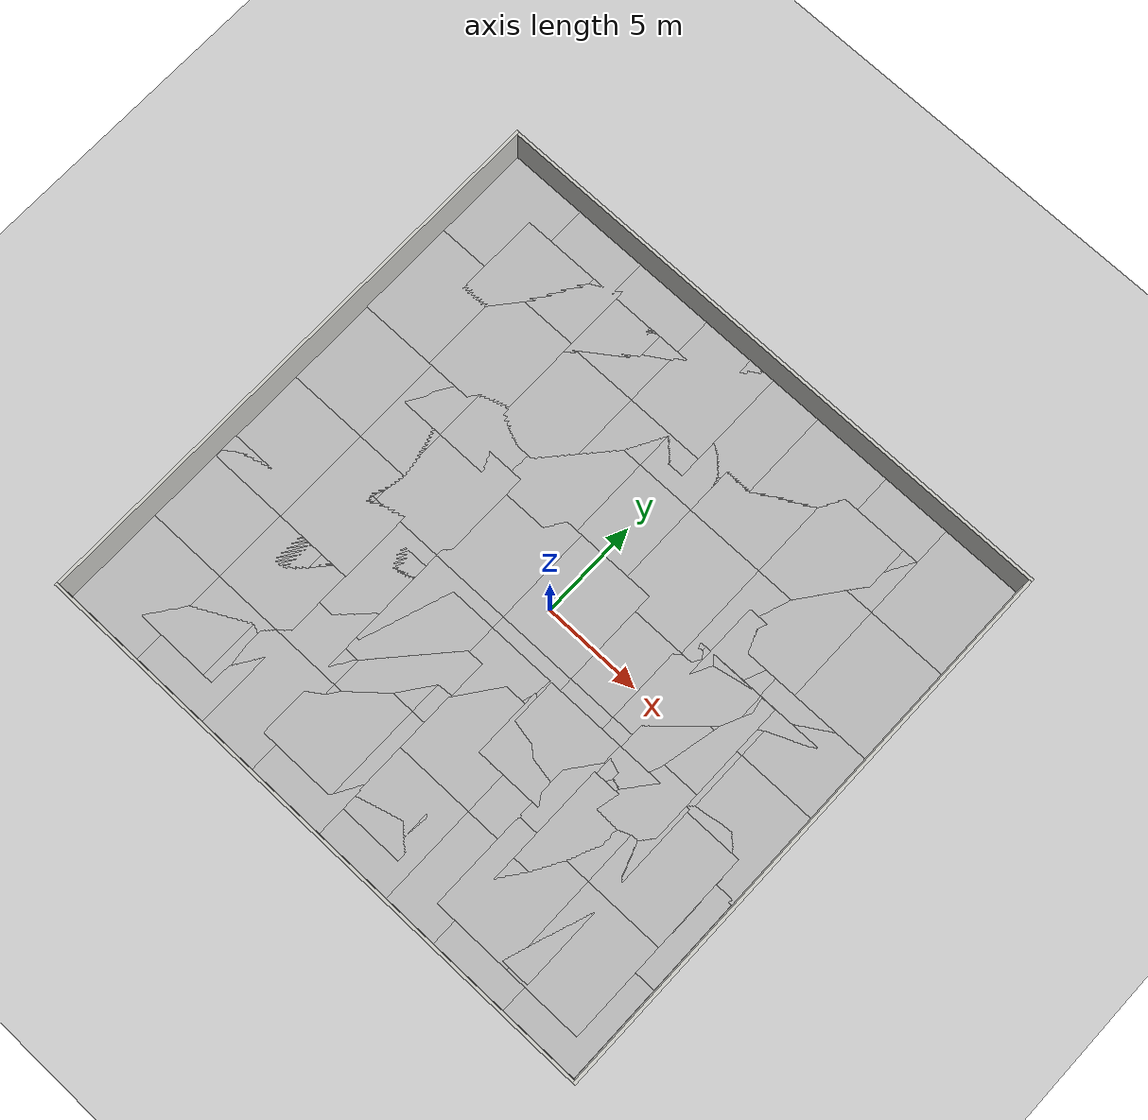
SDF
<sdf version="1.6">
 <world name="default">
  <light name="sun" type="directional">
   <pose>0 0 10 0 -0 0</pose>
   <diffuse>0.8 0.8 0.8 1</diffuse>
   <specular>0.2 0.2 0.2 1</specular>
   <attenuation>
    <range>1000</range>
    <constant>0.9</constant>
    <linear>0.01</linear>
    <quadratic>0.001</quadratic>
   </attenuation>
   <direction>-0.5 0.1 -0.9</direction>
  </light>
  <model name="ground_plane">
   <static>1</static>
   <link name="link">
    <collision name="collision">
     <geometry><plane><normal>0 0 1</normal><size>100 100</size></plane></geometry>
     <surface><friction><ode><mu>100</mu><mu2>50</mu2></ode></friction></surface>
    </collision>
    <visual name="visual">
     <cast_shadows>0</cast_shadows>
     <geometry><plane><normal>0 0 1</normal><size>100 100</size></plane></geometry>
     <material>
      <script><uri>file://media/materials/scripts/gazebo.material</uri><name>Gazebo/Grey</name></script>
     </material>
    </visual>
   </link>
  </model>
  <gravity>0 0 -9.8</gravity>
  <magnetic_field>6e-06 2.3e-05 -4.2e-05</magnetic_field>
  <atmosphere type="adiabatic"/>
  <physics name="default_physics" default="0" type="ode">
   <max_step_size>0.001</max_step_size>
   <real_time_factor>1</real_time_factor>
   <real_time_update_rate>1000</real_time_update_rate>
  </physics>
  <scene><ambient>0.4 0.4 0.4 1</ambient><background>0.7 0.7 0.7 1</background><shadows>1</shadows></scene>
  <audio><device>default</device></audio>
  <spherical_coordinates>
   <surface_model>EARTH_WGS84</surface_model>
   <latitude_deg>0</latitude_deg>
   <longitude_deg>0</longitude_deg>
   <elevation>0</elevation>
   <heading_deg>0</heading_deg>
  </spherical_coordinates>
  <model name="mud_box">
   <static>1</static>
   <link name="link">
    <collision name="collision"><geometry><box><size>8 10 0.2</size></box></geometry></collision>
    <visual name="visual_1">
     <pose>-2 2.5 0 0 -0 0</pose>
     <cast_shadows>0</cast_shadows>
     <geometry><box><size>4 5 0.2</size></box></geometry>
     <material>
      <script>
       <uri>model://mud_box/materials/scripts</uri>
       <uri>model://mud_box/materials/textures</uri>
       <name>vrc/mud</name>
      </script>
     </material>
    </visual>
    <visual name="visual_2">
     <pose>2 2.5 0 0 -0 0</pose>
     <cast_shadows>0</cast_shadows>
     <geometry><box><size>4 5 0.2</size></box></geometry>
     <material>
      <script>
       <uri>model://mud_box/materials/scripts</uri>
       <uri>model://mud_box/materials/textures</uri>
       <name>vrc/mud</name>
      </script>
     </material>
    </visual>
    <visual name="visual_3">
     <pose>2 -2.5 0 0 -0 0</pose>
     <cast_shadows>0</cast_shadows>
     <geometry><box><size>4 5 0.2</size></box></geometry>
     <material>
      <script>
       <uri>model://mud_box/materials/scripts</uri>
       <uri>model://mud_box/materials/textures</uri>
       <name>vrc/mud</name>
      </script>
     </material>
    </visual>
    <visual name="visual_4">
     <pose>-2 -2.5 0 0 -0 0</pose>
     <cast_shadows>0</cast_shadows>
     <geometry><box><size>4 5 0.2</size></box></geometry>
     <material>
      <script>
       <uri>model://mud_box/materials/scripts</uri>
       <uri>model://mud_box/materials/textures</uri>
       <name>vrc/mud</name>
      </script>
     </material>
    </visual>
   </link>
   <pose>-8.95895 7.48076 0 0 -0 0</pose>
  </model>
  <model name="mud_box_0">
   <static>1</static>
   <link name="link">
    <collision name="collision"><geometry><box><size>8 10 0.2</size></box></geometry></collision>
    <visual name="visual_1">
     <pose>-2 2.5 0 0 -0 0</pose>
     <cast_shadows>0</cast_shadows>
     <geometry><box><size>4 5 0.2</size></box></geometry>
     <material>
      <script>
       <uri>model://mud_box/materials/scripts</uri>
       <uri>model://mud_box/materials/textures</uri>
       <name>vrc/mud</name>
      </script>
     </material>
    </visual>
    <visual name="visual_2">
     <pose>2 2.5 0 0 -0 0</pose>
     <cast_shadows>0</cast_shadows>
     <geometry><box><size>4 5 0.2</size></box></geometry>
     <material>
      <script>
       <uri>model://mud_box/materials/scripts</uri>
       <uri>model://mud_box/materials/textures</uri>
       <name>vrc/mud</name>
      </script>
     </material>
    </visual>
    <visual name="visual_3">
     <pose>2 -2.5 0 0 -0 0</pose>
     <cast_shadows>0</cast_shadows>
     <geometry><box><size>4 5 0.2</size></box></geometry>
     <material>
      <script>
       <uri>model://mud_box/materials/scripts</uri>
       <uri>model://mud_box/materials/textures</uri>
       <name>vrc/mud</name>
      </script>
     </material>
    </visual>
    <visual name="visual_4">
     <pose>-2 -2.5 0 0 -0 0</pose>
     <cast_shadows>0</cast_shadows>
     <geometry><box><size>4 5 0.2</size></box></geometry>
     <material>
      <script>
       <uri>model://mud_box/materials/scripts</uri>
       <uri>model://mud_box/materials/textures</uri>
       <name>vrc/mud</name>
      </script>
     </material>
    </visual>
   </link>
   <pose>-1.55469 7.49605 0 0 -0 0</pose>
  </model>
  <model name="mud_box_1">
   <static>1</static>
   <link name="link">
    <collision name="collision"><geometry><box><size>8 10 0.2</size></box></geometry></collision>
    <visual name="visual_1">
     <pose>-2 2.5 0 0 -0 0</pose>
     <cast_shadows>0</cast_shadows>
     <geometry><box><size>4 5 0.2</size></box></geometry>
     <material>
      <script>
       <uri>model://mud_box/materials/scripts</uri>
       <uri>model://mud_box/materials/textures</uri>
       <name>vrc/mud</name>
      </script>
     </material>
    </visual>
    <visual name="visual_2">
     <pose>2 2.5 0 0 -0 0</pose>
     <cast_shadows>0</cast_shadows>
     <geometry><box><size>4 5 0.2</size></box></geometry>
     <material>
      <script>
       <uri>model://mud_box/materials/scripts</uri>
       <uri>model://mud_box/materials/textures</uri>
       <name>vrc/mud</name>
      </script>
     </material>
    </visual>
    <visual name="visual_3">
     <pose>2 -2.5 0 0 -0 0</pose>
     <cast_shadows>0</cast_shadows>
     <geometry><box><size>4 5 0.2</size></box></geometry>
     <material>
      <script>
       <uri>model://mud_box/materials/scripts</uri>
       <uri>model://mud_box/materials/textures</uri>
       <name>vrc/mud</name>
      </script>
     </material>
    </visual>
    <visual name="visual_4">
     <pose>-2 -2.5 0 0 -0 0</pose>
     <cast_shadows>0</cast_shadows>
     <geometry><box><size>4 5 0.2</size></box></geometry>
     <material>
      <script>
       <uri>model://mud_box/materials/scripts</uri>
       <uri>model://mud_box/materials/textures</uri>
       <name>vrc/mud</name>
      </script>
     </material>
    </visual>
   </link>
   <pose>5.43295 7.49151 0 0 -0 0</pose>
  </model>
  <model name="mud_box_2">
   <static>1</static>
   <link name="link">
    <collision name="collision"><geometry><box><size>8 10 0.2</size></box></geometry></collision>
    <visual name="visual_1">
     <pose>-2 2.5 0 0 -0 0</pose>
     <cast_shadows>0</cast_shadows>
     <geometry><box><size>4 5 0.2</size></box></geometry>
     <material>
      <script>
       <uri>model://mud_box/materials/scripts</uri>
       <uri>model://mud_box/materials/textures</uri>
       <name>vrc/mud</name>
      </script>
     </material>
    </visual>
    <visual name="visual_2">
     <pose>2 2.5 0 0 -0 0</pose>
     <cast_shadows>0</cast_shadows>
     <geometry><box><size>4 5 0.2</size></box></geometry>
     <material>
      <script>
       <uri>model://mud_box/materials/scripts</uri>
       <uri>model://mud_box/materials/textures</uri>
       <name>vrc/mud</name>
      </script>
     </material>
    </visual>
    <visual name="visual_3">
     <pose>2 -2.5 0 0 -0 0</pose>
     <cast_shadows>0</cast_shadows>
     <geometry><box><size>4 5 0.2</size></box></geometry>
     <material>
      <script>
       <uri>model://mud_box/materials/scripts</uri>
       <uri>model://mud_box/materials/textures</uri>
       <name>vrc/mud</name>
      </script>
     </material>
    </visual>
    <visual name="visual_4">
     <pose>-2 -2.5 0 0 -0 0</pose>
     <cast_shadows>0</cast_shadows>
     <geometry><box><size>4 5 0.2</size></box></geometry>
     <material>
      <script>
       <uri>model://mud_box/materials/scripts</uri>
       <uri>model://mud_box/materials/textures</uri>
       <name>vrc/mud</name>
      </script>
     </material>
    </visual>
   </link>
   <pose>9.13681 7.49142 0 0 -0 0</pose>
  </model>
  <model name="mud_box_3">
   <static>1</static>
   <link name="link">
    <collision name="collision"><geometry><box><size>8 10 0.2</size></box></geometry></collision>
    <visual name="visual_1">
     <pose>-2 2.5 0 0 -0 0</pose>
     <cast_shadows>0</cast_shadows>
     <geometry><box><size>4 5 0.2</size></box></geometry>
     <material>
      <script>
       <uri>model://mud_box/materials/scripts</uri>
       <uri>model://mud_box/materials/textures</uri>
       <name>vrc/mud</name>
      </script>
     </material>
    </visual>
    <visual name="visual_2">
     <pose>2 2.5 0 0 -0 0</pose>
     <cast_shadows>0</cast_shadows>
     <geometry><box><size>4 5 0.2</size></box></geometry>
     <material>
      <script>
       <uri>model://mud_box/materials/scripts</uri>
       <uri>model://mud_box/materials/textures</uri>
       <name>vrc/mud</name>
      </script>
     </material>
    </visual>
    <visual name="visual_3">
     <pose>2 -2.5 0 0 -0 0</pose>
     <cast_shadows>0</cast_shadows>
     <geometry><box><size>4 5 0.2</size></box></geometry>
     <material>
      <script>
       <uri>model://mud_box/materials/scripts</uri>
       <uri>model://mud_box/materials/textures</uri>
       <name>vrc/mud</name>
      </script>
     </material>
    </visual>
    <visual name="visual_4">
     <pose>-2 -2.5 0 0 -0 0</pose>
     <cast_shadows>0</cast_shadows>
     <geometry><box><size>4 5 0.2</size></box></geometry>
     <material>
      <script>
       <uri>model://mud_box/materials/scripts</uri>
       <uri>model://mud_box/materials/textures</uri>
       <name>vrc/mud</name>
      </script>
     </material>
    </visual>
   </link>
   <pose>-8.93612 -1.58015 0 0 -0 0</pose>
  </model>
  <model name="mud_box_4">
   <static>1</static>
   <link name="link">
    <collision name="collision"><geometry><box><size>8 10 0.2</size></box></geometry></collision>
    <visual name="visual_1">
     <pose>-2 2.5 0 0 -0 0</pose>
     <cast_shadows>0</cast_shadows>
     <geometry><box><size>4 5 0.2</size></box></geometry>
     <material>
      <script>
       <uri>model://mud_box/materials/scripts</uri>
       <uri>model://mud_box/materials/textures</uri>
       <name>vrc/mud</name>
      </script>
     </material>
    </visual>
    <visual name="visual_2">
     <pose>2 2.5 0 0 -0 0</pose>
     <cast_shadows>0</cast_shadows>
     <geometry><box><size>4 5 0.2</size></box></geometry>
     <material>
      <script>
       <uri>model://mud_box/materials/scripts</uri>
       <uri>model://mud_box/materials/textures</uri>
       <name>vrc/mud</name>
      </script>
     </material>
    </visual>
    <visual name="visual_3">
     <pose>2 -2.5 0 0 -0 0</pose>
     <cast_shadows>0</cast_shadows>
     <geometry><box><size>4 5 0.2</size></box></geometry>
     <material>
      <script>
       <uri>model://mud_box/materials/scripts</uri>
       <uri>model://mud_box/materials/textures</uri>
       <name>vrc/mud</name>
      </script>
     </material>
    </visual>
    <visual name="visual_4">
     <pose>-2 -2.5 0 0 -0 0</pose>
     <cast_shadows>0</cast_shadows>
     <geometry><box><size>4 5 0.2</size></box></geometry>
     <material>
      <script>
       <uri>model://mud_box/materials/scripts</uri>
       <uri>model://mud_box/materials/textures</uri>
       <name>vrc/mud</name>
      </script>
     </material>
    </visual>
   </link>
   <pose>-1.26149 -1.59097 0 0 -0 0</pose>
  </model>
  <model name="mud_box_5">
   <static>1</static>
   <link name="link">
    <collision name="collision"><geometry><box><size>8 10 0.2</size></box></geometry></collision>
    <visual name="visual_1">
     <pose>-2 2.5 0 0 -0 0</pose>
     <cast_shadows>0</cast_shadows>
     <geometry><box><size>4 5 0.2</size></box></geometry>
     <material>
      <script>
       <uri>model://mud_box/materials/scripts</uri>
       <uri>model://mud_box/materials/textures</uri>
       <name>vrc/mud</name>
      </script>
     </material>
    </visual>
    <visual name="visual_2">
     <pose>2 2.5 0 0 -0 0</pose>
     <cast_shadows>0</cast_shadows>
     <geometry><box><size>4 5 0.2</size></box></geometry>
     <material>
      <script>
       <uri>model://mud_box/materials/scripts</uri>
       <uri>model://mud_box/materials/textures</uri>
       <name>vrc/mud</name>
      </script>
     </material>
    </visual>
    <visual name="visual_3">
     <pose>2 -2.5 0 0 -0 0</pose>
     <cast_shadows>0</cast_shadows>
     <geometry><box><size>4 5 0.2</size></box></geometry>
     <material>
      <script>
       <uri>model://mud_box/materials/scripts</uri>
       <uri>model://mud_box/materials/textures</uri>
       <name>vrc/mud</name>
      </script>
     </material>
    </visual>
    <visual name="visual_4">
     <pose>-2 -2.5 0 0 -0 0</pose>
     <cast_shadows>0</cast_shadows>
     <geometry><box><size>4 5 0.2</size></box></geometry>
     <material>
      <script>
       <uri>model://mud_box/materials/scripts</uri>
       <uri>model://mud_box/materials/textures</uri>
       <name>vrc/mud</name>
      </script>
     </material>
    </visual>
   </link>
   <pose>6.02813 -1.5762 0 0 -0 0</pose>
  </model>
  <model name="mud_box_6">
   <static>1</static>
   <link name="link">
    <collision name="collision"><geometry><box><size>8 10 0.2</size></box></geometry></collision>
    <visual name="visual_1">
     <pose>-2 2.5 0 0 -0 0</pose>
     <cast_shadows>0</cast_shadows>
     <geometry><box><size>4 5 0.2</size></box></geometry>
     <material>
      <script>
       <uri>model://mud_box/materials/scripts</uri>
       <uri>model://mud_box/materials/textures</uri>
       <name>vrc/mud</name>
      </script>
     </material>
    </visual>
    <visual name="visual_2">
     <pose>2 2.5 0 0 -0 0</pose>
     <cast_shadows>0</cast_shadows>
     <geometry><box><size>4 5 0.2</size></box></geometry>
     <material>
      <script>
       <uri>model://mud_box/materials/scripts</uri>
       <uri>model://mud_box/materials/textures</uri>
       <name>vrc/mud</name>
      </script>
     </material>
    </visual>
    <visual name="visual_3">
     <pose>2 -2.5 0 0 -0 0</pose>
     <cast_shadows>0</cast_shadows>
     <geometry><box><size>4 5 0.2</size></box></geometry>
     <material>
      <script>
       <uri>model://mud_box/materials/scripts</uri>
       <uri>model://mud_box/materials/textures</uri>
       <name>vrc/mud</name>
      </script>
     </material>
    </visual>
    <visual name="visual_4">
     <pose>-2 -2.5 0 0 -0 0</pose>
     <cast_shadows>0</cast_shadows>
     <geometry><box><size>4 5 0.2</size></box></geometry>
     <material>
      <script>
       <uri>model://mud_box/materials/scripts</uri>
       <uri>model://mud_box/materials/textures</uri>
       <name>vrc/mud</name>
      </script>
     </material>
    </visual>
   </link>
   <pose>9.18201 -1.56242 0 0 -0 0</pose>
  </model>
  <model name="mud_box_7">
   <static>1</static>
   <link name="link">
    <collision name="collision"><geometry><box><size>8 10 0.2</size></box></geometry></collision>
    <visual name="visual_1">
     <pose>-2 2.5 0 0 -0 0</pose>
     <cast_shadows>0</cast_shadows>
     <geometry><box><size>4 5 0.2</size></box></geometry>
     <material>
      <script>
       <uri>model://mud_box/materials/scripts</uri>
       <uri>model://mud_box/materials/textures</uri>
       <name>vrc/mud</name>
      </script>
     </material>
    </visual>
    <visual name="visual_2">
     <pose>2 2.5 0 0 -0 0</pose>
     <cast_shadows>0</cast_shadows>
     <geometry><box><size>4 5 0.2</size></box></geometry>
     <material>
      <script>
       <uri>model://mud_box/materials/scripts</uri>
       <uri>model://mud_box/materials/textures</uri>
       <name>vrc/mud</name>
      </script>
     </material>
    </visual>
    <visual name="visual_3">
     <pose>2 -2.5 0 0 -0 0</pose>
     <cast_shadows>0</cast_shadows>
     <geometry><box><size>4 5 0.2</size></box></geometry>
     <material>
      <script>
       <uri>model://mud_box/materials/scripts</uri>
       <uri>model://mud_box/materials/textures</uri>
       <name>vrc/mud</name>
      </script>
     </material>
    </visual>
    <visual name="visual_4">
     <pose>-2 -2.5 0 0 -0 0</pose>
     <cast_shadows>0</cast_shadows>
     <geometry><box><size>4 5 0.2</size></box></geometry>
     <material>
      <script>
       <uri>model://mud_box/materials/scripts</uri>
       <uri>model://mud_box/materials/textures</uri>
       <name>vrc/mud</name>
      </script>
     </material>
    </visual>
   </link>
   <pose>-8.89693 -7.25687 0 0 -0 0</pose>
  </model>
  <model name="mud_box_8">
   <static>1</static>
   <link name="link">
    <collision name="collision"><geometry><box><size>8 10 0.2</size></box></geometry></collision>
    <visual name="visual_1">
     <pose>-2 2.5 0 0 -0 0</pose>
     <cast_shadows>0</cast_shadows>
     <geometry><box><size>4 5 0.2</size></box></geometry>
     <material>
      <script>
       <uri>model://mud_box/materials/scripts</uri>
       <uri>model://mud_box/materials/textures</uri>
       <name>vrc/mud</name>
      </script>
     </material>
    </visual>
    <visual name="visual_2">
     <pose>2 2.5 0 0 -0 0</pose>
     <cast_shadows>0</cast_shadows>
     <geometry><box><size>4 5 0.2</size></box></geometry>
     <material>
      <script>
       <uri>model://mud_box/materials/scripts</uri>
       <uri>model://mud_box/materials/textures</uri>
       <name>vrc/mud</name>
      </script>
     </material>
    </visual>
    <visual name="visual_3">
     <pose>2 -2.5 0 0 -0 0</pose>
     <cast_shadows>0</cast_shadows>
     <geometry><box><size>4 5 0.2</size></box></geometry>
     <material>
      <script>
       <uri>model://mud_box/materials/scripts</uri>
       <uri>model://mud_box/materials/textures</uri>
       <name>vrc/mud</name>
      </script>
     </material>
    </visual>
    <visual name="visual_4">
     <pose>-2 -2.5 0 0 -0 0</pose>
     <cast_shadows>0</cast_shadows>
     <geometry><box><size>4 5 0.2</size></box></geometry>
     <material>
      <script>
       <uri>model://mud_box/materials/scripts</uri>
       <uri>model://mud_box/materials/textures</uri>
       <name>vrc/mud</name>
      </script>
     </material>
    </visual>
   </link>
   <pose>-1.26078 -7.25379 0 0 -0 0</pose>
  </model>
  <model name="mud_box_9">
   <static>1</static>
   <link name="link">
    <collision name="collision"><geometry><box><size>8 10 0.2</size></box></geometry></collision>
    <visual name="visual_1">
     <pose>-2 2.5 0 0 -0 0</pose>
     <cast_shadows>0</cast_shadows>
     <geometry><box><size>4 5 0.2</size></box></geometry>
     <material>
      <script>
       <uri>model://mud_box/materials/scripts</uri>
       <uri>model://mud_box/materials/textures</uri>
       <name>vrc/mud</name>
      </script>
     </material>
    </visual>
    <visual name="visual_2">
     <pose>2 2.5 0 0 -0 0</pose>
     <cast_shadows>0</cast_shadows>
     <geometry><box><size>4 5 0.2</size></box></geometry>
     <material>
      <script>
       <uri>model://mud_box/materials/scripts</uri>
       <uri>model://mud_box/materials/textures</uri>
       <name>vrc/mud</name>
      </script>
     </material>
    </visual>
    <visual name="visual_3">
     <pose>2 -2.5 0 0 -0 0</pose>
     <cast_shadows>0</cast_shadows>
     <geometry><box><size>4 5 0.2</size></box></geometry>
     <material>
      <script>
       <uri>model://mud_box/materials/scripts</uri>
       <uri>model://mud_box/materials/textures</uri>
       <name>vrc/mud</name>
      </script>
     </material>
    </visual>
    <visual name="visual_4">
     <pose>-2 -2.5 0 0 -0 0</pose>
     <cast_shadows>0</cast_shadows>
     <geometry><box><size>4 5 0.2</size></box></geometry>
     <material>
      <script>
       <uri>model://mud_box/materials/scripts</uri>
       <uri>model://mud_box/materials/textures</uri>
       <name>vrc/mud</name>
      </script>
     </material>
    </visual>
   </link>
   <pose>6.22506 -7.26385 0 0 -0 0</pose>
  </model>
  <model name="mud_box_10">
   <static>1</static>
   <link name="link">
    <collision name="collision"><geometry><box><size>8 10 0.2</size></box></geometry></collision>
    <visual name="visual_1">
     <pose>-2 2.5 0 0 -0 0</pose>
     <cast_shadows>0</cast_shadows>
     <geometry><box><size>4 5 0.2</size></box></geometry>
     <material>
      <script>
       <uri>model://mud_box/materials/scripts</uri>
       <uri>model://mud_box/materials/textures</uri>
       <name>vrc/mud</name>
      </script>
     </material>
    </visual>
    <visual name="visual_2">
     <pose>2 2.5 0 0 -0 0</pose>
     <cast_shadows>0</cast_shadows>
     <geometry><box><size>4 5 0.2</size></box></geometry>
     <material>
      <script>
       <uri>model://mud_box/materials/scripts</uri>
       <uri>model://mud_box/materials/textures</uri>
       <name>vrc/mud</name>
      </script>
     </material>
    </visual>
    <visual name="visual_3">
     <pose>2 -2.5 0 0 -0 0</pose>
     <cast_shadows>0</cast_shadows>
     <geometry><box><size>4 5 0.2</size></box></geometry>
     <material>
      <script>
       <uri>model://mud_box/materials/scripts</uri>
       <uri>model://mud_box/materials/textures</uri>
       <name>vrc/mud</name>
      </script>
     </material>
    </visual>
    <visual name="visual_4">
     <pose>-2 -2.5 0 0 -0 0</pose>
     <cast_shadows>0</cast_shadows>
     <geometry><box><size>4 5 0.2</size></box></geometry>
     <material>
      <script>
       <uri>model://mud_box/materials/scripts</uri>
       <uri>model://mud_box/materials/textures</uri>
       <name>vrc/mud</name>
      </script>
     </material>
    </visual>
   </link>
   <pose>9.15076 -7.40134 0 0 -0 0</pose>
  </model>
  <model name="Untitled">
   <pose>-0.642288 0.3532 0 0 -0 0</pose>
   <link name="Wall_10">
    <collision name="Wall_10_Collision">
     <geometry><box><size>30 0.15 2.5</size></box></geometry>
     <pose>0 0 1.25 0 -0 0</pose>
    </collision>
    <visual name="Wall_10_Visual">
     <pose>0 0 1.25 0 -0 0</pose>
     <geometry><box><size>30 0.15 2.5</size></box></geometry>
     <material>
      <script><uri>file://media/materials/scripts/gazebo.material</uri><name>Gazebo/CeilingTiled</name></script>
      <ambient>1 1 1 1</ambient>
     </material>
     <meta><layer>0</layer></meta>
    </visual>
    <pose>0 14.1378 0 0 -0 0</pose>
   </link>
   <link name="Wall_11">
    <collision name="Wall_11_Collision">
     <geometry><box><size>28.4256 0.15 2.5</size></box></geometry>
     <pose>0 0 1.25 0 -0 0</pose>
    </collision>
    <visual name="Wall_11_Visual">
     <pose>0 0 1.25 0 -0 0</pose>
     <geometry><box><size>28.4256 0.15 2.5</size></box></geometry>
     <material>
      <script><uri>file://media/materials/scripts/gazebo.material</uri><name>Gazebo/CeilingTiled</name></script>
      <ambient>1 1 1 1</ambient>
     </material>
     <meta><layer>0</layer></meta>
    </visual>
    <pose>14.925 0 0 0 -0 -1.5708</pose>
   </link>
   <link name="Wall_20">
    <collision name="Wall_20_Collision">
     <geometry><box><size>30 0.15 2.5</size></box></geometry>
     <pose>0 0 1.25 0 -0 0</pose>
    </collision>
    <visual name="Wall_20_Visual">
     <pose>0 0 1.25 0 -0 0</pose>
     <geometry><box><size>30 0.15 2.5</size></box></geometry>
     <material>
      <script><uri>file://media/materials/scripts/gazebo.material</uri><name>Gazebo/CeilingTiled</name></script>
      <ambient>1 1 1 1</ambient>
     </material>
     <meta><layer>0</layer></meta>
    </visual>
    <pose>0 -14.1378 0 0 -0 3.14159</pose>
   </link>
   <link name="Wall_21">
    <collision name="Wall_21_Collision">
     <geometry><box><size>28.4256 0.15 2.5</size></box></geometry>
     <pose>0 0 1.25 0 -0 0</pose>
    </collision>
    <visual name="Wall_21_Visual">
     <pose>0 0 1.25 0 -0 0</pose>
     <geometry><box><size>28.4256 0.15 2.5</size></box></geometry>
     <material>
      <script><uri>file://media/materials/scripts/gazebo.material</uri><name>Gazebo/CeilingTiled</name></script>
      <ambient>1 1 1 1</ambient>
     </material>
     <meta><layer>0</layer></meta>
    </visual>
    <pose>-14.925 0 0 0 -0 1.5708</pose>
   </link>
   <static>1</static>
  </model>
  <model name="mud_box_11">
   <static>1</static>
   <link name="link">
    <collision name="collision"><geometry><box><size>8 10 0.2</size></box></geometry></collision>
    <visual name="visual_1">
     <pose>-2 2.5 0 0 -0 0</pose>
     <cast_shadows>0</cast_shadows>
     <geometry><box><size>4 5 0.2</size></box></geometry>
     <material>
      <script>
       <uri>model://mud_box/materials/scripts</uri>
       <uri>model://mud_box/materials/textures</uri>
       <name>vrc/mud</name>
      </script>
     </material>
    </visual>
    <visual name="visual_2">
     <pose>2 2.5 0 0 -0 0</pose>
     <cast_shadows>0</cast_shadows>
     <geometry><box><size>4 5 0.2</size></box></geometry>
     <material>
      <script>
       <uri>model://mud_box/materials/scripts</uri>
       <uri>model://mud_box/materials/textures</uri>
       <name>vrc/mud</name>
      </script>
     </material>
    </visual>
    <visual name="visual_3">
     <pose>2 -2.5 0 0 -0 0</pose>
     <cast_shadows>0</cast_shadows>
     <geometry><box><size>4 5 0.2</size></box></geometry>
     <material>
      <script>
       <uri>model://mud_box/materials/scripts</uri>
       <uri>model://mud_box/materials/textures</uri>
       <name>vrc/mud</name>
      </script>
     </material>
    </visual>
    <visual name="visual_4">
     <pose>-2 -2.5 0 0 -0 0</pose>
     <cast_shadows>0</cast_shadows>
     <geometry><box><size>4 5 0.2</size></box></geometry>
     <material>
      <script>
       <uri>model://mud_box/materials/scripts</uri>
       <uri>model://mud_box/materials/textures</uri>
       <name>vrc/mud</name>
      </script>
     </material>
    </visual>
   </link>
   <pose>-11.5975 9.54983 0 0 -0 0</pose>
  </model>
  <model name="mud_box_12">
   <static>1</static>
   <link name="link">
    <collision name="collision"><geometry><box><size>8 10 0.2</size></box></geometry></collision>
    <visual name="visual_1">
     <pose>-2 2.5 0 0 -0 0</pose>
     <cast_shadows>0</cast_shadows>
     <geometry><box><size>4 5 0.2</size></box></geometry>
     <material>
      <script>
       <uri>model://mud_box/materials/scripts</uri>
       <uri>model://mud_box/materials/textures</uri>
       <name>vrc/mud</name>
      </script>
     </material>
    </visual>
    <visual name="visual_2">
     <pose>2 2.5 0 0 -0 0</pose>
     <cast_shadows>0</cast_shadows>
     <geometry><box><size>4 5 0.2</size></box></geometry>
     <material>
      <script>
       <uri>model://mud_box/materials/scripts</uri>
       <uri>model://mud_box/materials/textures</uri>
       <name>vrc/mud</name>
      </script>
     </material>
    </visual>
    <visual name="visual_3">
     <pose>2 -2.5 0 0 -0 0</pose>
     <cast_shadows>0</cast_shadows>
     <geometry><box><size>4 5 0.2</size></box></geometry>
     <material>
      <script>
       <uri>model://mud_box/materials/scripts</uri>
       <uri>model://mud_box/materials/textures</uri>
       <name>vrc/mud</name>
      </script>
     </material>
    </visual>
    <visual name="visual_4">
     <pose>-2 -2.5 0 0 -0 0</pose>
     <cast_shadows>0</cast_shadows>
     <geometry><box><size>4 5 0.2</size></box></geometry>
     <material>
      <script>
       <uri>model://mud_box/materials/scripts</uri>
       <uri>model://mud_box/materials/textures</uri>
       <name>vrc/mud</name>
      </script>
     </material>
    </visual>
   </link>
   <pose>-11.4637 0.021037 0 0 -0 0</pose>
  </model>
  <model name="mud_box_14">
   <static>1</static>
   <link name="link">
    <collision name="collision"><geometry><box><size>8 10 0.2</size></box></geometry></collision>
    <visual name="visual_1">
     <pose>-2 2.5 0 0 -0 0</pose>
     <cast_shadows>0</cast_shadows>
     <geometry><box><size>4 5 0.2</size></box></geometry>
     <material>
      <script>
       <uri>model://mud_box/materials/scripts</uri>
       <uri>model://mud_box/materials/textures</uri>
       <name>vrc/mud</name>
      </script>
     </material>
    </visual>
    <visual name="visual_2">
     <pose>2 2.5 0 0 -0 0</pose>
     <cast_shadows>0</cast_shadows>
     <geometry><box><size>4 5 0.2</size></box></geometry>
     <material>
      <script>
       <uri>model://mud_box/materials/scripts</uri>
       <uri>model://mud_box/materials/textures</uri>
       <name>vrc/mud</name>
      </script>
     </material>
    </visual>
    <visual name="visual_3">
     <pose>2 -2.5 0 0 -0 0</pose>
     <cast_shadows>0</cast_shadows>
     <geometry><box><size>4 5 0.2</size></box></geometry>
     <material>
      <script>
       <uri>model://mud_box/materials/scripts</uri>
       <uri>model://mud_box/materials/textures</uri>
       <name>vrc/mud</name>
      </script>
     </material>
    </visual>
    <visual name="visual_4">
     <pose>-2 -2.5 0 0 -0 0</pose>
     <cast_shadows>0</cast_shadows>
     <geometry><box><size>4 5 0.2</size></box></geometry>
     <material>
      <script>
       <uri>model://mud_box/materials/scripts</uri>
       <uri>model://mud_box/materials/textures</uri>
       <name>vrc/mud</name>
      </script>
     </material>
    </visual>
   </link>
   <pose>-4.49552 -8.70844 0 0 -0 0</pose>
  </model>
  <model name="mud_box_13">
   <static>1</static>
   <link name="link">
    <collision name="collision"><geometry><box><size>8 10 0.2</size></box></geometry></collision>
    <visual name="visual_1">
     <pose>-2 2.5 0 0 -0 0</pose>
     <cast_shadows>0</cast_shadows>
     <geometry><box><size>4 5 0.2</size></box></geometry>
     <material>
      <script>
       <uri>model://mud_box/materials/scripts</uri>
       <uri>model://mud_box/materials/textures</uri>
       <name>vrc/mud</name>
      </script>
     </material>
    </visual>
    <visual name="visual_2">
     <pose>2 2.5 0 0 -0 0</pose>
     <cast_shadows>0</cast_shadows>
     <geometry><box><size>4 5 0.2</size></box></geometry>
     <material>
      <script>
       <uri>model://mud_box/materials/scripts</uri>
       <uri>model://mud_box/materials/textures</uri>
       <name>vrc/mud</name>
      </script>
     </material>
    </visual>
    <visual name="visual_3">
     <pose>2 -2.5 0 0 -0 0</pose>
     <cast_shadows>0</cast_shadows>
     <geometry><box><size>4 5 0.2</size></box></geometry>
     <material>
      <script>
       <uri>model://mud_box/materials/scripts</uri>
       <uri>model://mud_box/materials/textures</uri>
       <name>vrc/mud</name>
      </script>
     </material>
    </visual>
    <visual name="visual_4">
     <pose>-2 -2.5 0 0 -0 0</pose>
     <cast_shadows>0</cast_shadows>
     <geometry><box><size>4 5 0.2</size></box></geometry>
     <material>
      <script>
       <uri>model://mud_box/materials/scripts</uri>
       <uri>model://mud_box/materials/textures</uri>
       <name>vrc/mud</name>
      </script>
     </material>
    </visual>
   </link>
   <pose>-11.5012 -8.71073 0 0 -0 0</pose>
  </model>
  <model name="mud_box_15">
   <static>1</static>
   <link name="link">
    <collision name="collision"><geometry><box><size>8 10 0.2</size></box></geometry></collision>
    <visual name="visual_1">
     <pose>-2 2.5 0 0 -0 0</pose>
     <cast_shadows>0</cast_shadows>
     <geometry><box><size>4 5 0.2</size></box></geometry>
     <material>
      <script>
       <uri>model://mud_box/materials/scripts</uri>
       <uri>model://mud_box/materials/textures</uri>
       <name>vrc/mud</name>
      </script>
     </material>
    </visual>
    <visual name="visual_2">
     <pose>2 2.5 0 0 -0 0</pose>
     <cast_shadows>0</cast_shadows>
     <geometry><box><size>4 5 0.2</size></box></geometry>
     <material>
      <script>
       <uri>model://mud_box/materials/scripts</uri>
       <uri>model://mud_box/materials/textures</uri>
       <name>vrc/mud</name>
      </script>
     </material>
    </visual>
    <visual name="visual_3">
     <pose>2 -2.5 0 0 -0 0</pose>
     <cast_shadows>0</cast_shadows>
     <geometry><box><size>4 5 0.2</size></box></geometry>
     <material>
      <script>
       <uri>model://mud_box/materials/scripts</uri>
       <uri>model://mud_box/materials/textures</uri>
       <name>vrc/mud</name>
      </script>
     </material>
    </visual>
    <visual name="visual_4">
     <pose>-2 -2.5 0 0 -0 0</pose>
     <cast_shadows>0</cast_shadows>
     <geometry><box><size>4 5 0.2</size></box></geometry>
     <material>
      <script>
       <uri>model://mud_box/materials/scripts</uri>
       <uri>model://mud_box/materials/textures</uri>
       <name>vrc/mud</name>
      </script>
     </material>
    </visual>
   </link>
   <pose>3.44803 -8.71712 0 0 -0 0</pose>
  </model>
  <model name="mud_box_16">
   <static>1</static>
   <link name="link">
    <collision name="collision"><geometry><box><size>8 10 0.2</size></box></geometry></collision>
    <visual name="visual_1">
     <pose>-2 2.5 0 0 -0 0</pose>
     <cast_shadows>0</cast_shadows>
     <geometry><box><size>4 5 0.2</size></box></geometry>
     <material>
      <script>
       <uri>model://mud_box/materials/scripts</uri>
       <uri>model://mud_box/materials/textures</uri>
       <name>vrc/mud</name>
      </script>
     </material>
    </visual>
    <visual name="visual_2">
     <pose>2 2.5 0 0 -0 0</pose>
     <cast_shadows>0</cast_shadows>
     <geometry><box><size>4 5 0.2</size></box></geometry>
     <material>
      <script>
       <uri>model://mud_box/materials/scripts</uri>
       <uri>model://mud_box/materials/textures</uri>
       <name>vrc/mud</name>
      </script>
     </material>
    </visual>
    <visual name="visual_3">
     <pose>2 -2.5 0 0 -0 0</pose>
     <cast_shadows>0</cast_shadows>
     <geometry><box><size>4 5 0.2</size></box></geometry>
     <material>
      <script>
       <uri>model://mud_box/materials/scripts</uri>
       <uri>model://mud_box/materials/textures</uri>
       <name>vrc/mud</name>
      </script>
     </material>
    </visual>
    <visual name="visual_4">
     <pose>-2 -2.5 0 0 -0 0</pose>
     <cast_shadows>0</cast_shadows>
     <geometry><box><size>4 5 0.2</size></box></geometry>
     <material>
      <script>
       <uri>model://mud_box/materials/scripts</uri>
       <uri>model://mud_box/materials/textures</uri>
       <name>vrc/mud</name>
      </script>
     </material>
    </visual>
   </link>
   <pose>10.1916 -8.81642 0 0 -0 0</pose>
  </model>
  <model name="mud_box_17">
   <static>1</static>
   <link name="link">
    <collision name="collision"><geometry><box><size>8 10 0.2</size></box></geometry></collision>
    <visual name="visual_1">
     <pose>-2 2.5 0 0 -0 0</pose>
     <cast_shadows>0</cast_shadows>
     <geometry><box><size>4 5 0.2</size></box></geometry>
     <material>
      <script>
       <uri>model://mud_box/materials/scripts</uri>
       <uri>model://mud_box/materials/textures</uri>
       <name>vrc/mud</name>
      </script>
     </material>
    </visual>
    <visual name="visual_2">
     <pose>2 2.5 0 0 -0 0</pose>
     <cast_shadows>0</cast_shadows>
     <geometry><box><size>4 5 0.2</size></box></geometry>
     <material>
      <script>
       <uri>model://mud_box/materials/scripts</uri>
       <uri>model://mud_box/materials/textures</uri>
       <name>vrc/mud</name>
      </script>
     </material>
    </visual>
    <visual name="visual_3">
     <pose>2 -2.5 0 0 -0 0</pose>
     <cast_shadows>0</cast_shadows>
     <geometry><box><size>4 5 0.2</size></box></geometry>
     <material>
      <script>
       <uri>model://mud_box/materials/scripts</uri>
       <uri>model://mud_box/materials/textures</uri>
       <name>vrc/mud</name>
      </script>
     </material>
    </visual>
    <visual name="visual_4">
     <pose>-2 -2.5 0 0 -0 0</pose>
     <cast_shadows>0</cast_shadows>
     <geometry><box><size>4 5 0.2</size></box></geometry>
     <material>
      <script>
       <uri>model://mud_box/materials/scripts</uri>
       <uri>model://mud_box/materials/textures</uri>
       <name>vrc/mud</name>
      </script>
     </material>
    </visual>
   </link>
   <pose>10.2938 0.972347 0 0 -0 0</pose>
  </model>
  <model name="mud_box_18">
   <static>1</static>
   <link name="link">
    <collision name="collision"><geometry><box><size>8 10 0.2</size></box></geometry></collision>
    <visual name="visual_1">
     <pose>-2 2.5 0 0 -0 0</pose>
     <cast_shadows>0</cast_shadows>
     <geometry><box><size>4 5 0.2</size></box></geometry>
     <material>
      <script>
       <uri>model://mud_box/materials/scripts</uri>
       <uri>model://mud_box/materials/textures</uri>
       <name>vrc/mud</name>
      </script>
     </material>
    </visual>
    <visual name="visual_2">
     <pose>2 2.5 0 0 -0 0</pose>
     <cast_shadows>0</cast_shadows>
     <geometry><box><size>4 5 0.2</size></box></geometry>
     <material>
      <script>
       <uri>model://mud_box/materials/scripts</uri>
       <uri>model://mud_box/materials/textures</uri>
       <name>vrc/mud</name>
      </script>
     </material>
    </visual>
    <visual name="visual_3">
     <pose>2 -2.5 0 0 -0 0</pose>
     <cast_shadows>0</cast_shadows>
     <geometry><box><size>4 5 0.2</size></box></geometry>
     <material>
      <script>
       <uri>model://mud_box/materials/scripts</uri>
       <uri>model://mud_box/materials/textures</uri>
       <name>vrc/mud</name>
      </script>
     </material>
    </visual>
    <visual name="visual_4">
     <pose>-2 -2.5 0 0 -0 0</pose>
     <cast_shadows>0</cast_shadows>
     <geometry><box><size>4 5 0.2</size></box></geometry>
     <material>
      <script>
       <uri>model://mud_box/materials/scripts</uri>
       <uri>model://mud_box/materials/textures</uri>
       <name>vrc/mud</name>
      </script>
     </material>
    </visual>
   </link>
   <pose>10.2244 9.44804 0 0 -0 0</pose>
  </model>
  <model name="mud_box_19">
   <static>1</static>
   <link name="link">
    <collision name="collision"><geometry><box><size>8 10 0.2</size></box></geometry></collision>
    <visual name="visual_1">
     <pose>-2 2.5 0 0 -0 0</pose>
     <cast_shadows>0</cast_shadows>
     <geometry><box><size>4 5 0.2</size></box></geometry>
     <material>
      <script>
       <uri>model://mud_box/materials/scripts</uri>
       <uri>model://mud_box/materials/textures</uri>
       <name>vrc/mud</name>
      </script>
     </material>
    </visual>
    <visual name="visual_2">
     <pose>2 2.5 0 0 -0 0</pose>
     <cast_shadows>0</cast_shadows>
     <geometry><box><size>4 5 0.2</size></box></geometry>
     <material>
      <script>
       <uri>model://mud_box/materials/scripts</uri>
       <uri>model://mud_box/materials/textures</uri>
       <name>vrc/mud</name>
      </script>
     </material>
    </visual>
    <visual name="visual_3">
     <pose>2 -2.5 0 0 -0 0</pose>
     <cast_shadows>0</cast_shadows>
     <geometry><box><size>4 5 0.2</size></box></geometry>
     <material>
      <script>
       <uri>model://mud_box/materials/scripts</uri>
       <uri>model://mud_box/materials/textures</uri>
       <name>vrc/mud</name>
      </script>
     </material>
    </visual>
    <visual name="visual_4">
     <pose>-2 -2.5 0 0 -0 0</pose>
     <cast_shadows>0</cast_shadows>
     <geometry><box><size>4 5 0.2</size></box></geometry>
     <material>
      <script>
       <uri>model://mud_box/materials/scripts</uri>
       <uri>model://mud_box/materials/textures</uri>
       <name>vrc/mud</name>
      </script>
     </material>
    </visual>
   </link>
   <pose>2.75474 9.43668 0 0 -0 0</pose>
  </model>
  <model name="mud_box_20">
   <static>1</static>
   <link name="link">
    <collision name="collision"><geometry><box><size>8 10 0.2</size></box></geometry></collision>
    <visual name="visual_1">
     <pose>-2 2.5 0 0 -0 0</pose>
     <cast_shadows>0</cast_shadows>
     <geometry><box><size>4 5 0.2</size></box></geometry>
     <material>
      <script>
       <uri>model://mud_box/materials/scripts</uri>
       <uri>model://mud_box/materials/textures</uri>
       <name>vrc/mud</name>
      </script>
     </material>
    </visual>
    <visual name="visual_2">
     <pose>2 2.5 0 0 -0 0</pose>
     <cast_shadows>0</cast_shadows>
     <geometry><box><size>4 5 0.2</size></box></geometry>
     <material>
      <script>
       <uri>model://mud_box/materials/scripts</uri>
       <uri>model://mud_box/materials/textures</uri>
       <name>vrc/mud</name>
      </script>
     </material>
    </visual>
    <visual name="visual_3">
     <pose>2 -2.5 0 0 -0 0</pose>
     <cast_shadows>0</cast_shadows>
     <geometry><box><size>4 5 0.2</size></box></geometry>
     <material>
      <script>
       <uri>model://mud_box/materials/scripts</uri>
       <uri>model://mud_box/materials/textures</uri>
       <name>vrc/mud</name>
      </script>
     </material>
    </visual>
    <visual name="visual_4">
     <pose>-2 -2.5 0 0 -0 0</pose>
     <cast_shadows>0</cast_shadows>
     <geometry><box><size>4 5 0.2</size></box></geometry>
     <material>
      <script>
       <uri>model://mud_box/materials/scripts</uri>
       <uri>model://mud_box/materials/textures</uri>
       <name>vrc/mud</name>
      </script>
     </material>
    </visual>
   </link>
   <pose>-3.88006 9.43717 0 0 -0 0</pose>
  </model>
 </world>
</sdf>
